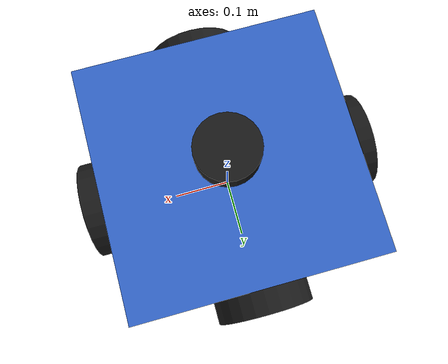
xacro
<?xml version="1.0"?>
<robot name="ammr_base" xmlns:xacro="http://www.ros.org/wiki/xacro">

  <!-- Properties -->
  <xacro:property name="base_size"    value="0.4"/>
  <xacro:property name="base_height"  value="0.12"/>
  <xacro:property name="wheel_radius" value="0.08"/>
  <xacro:property name="wheel_width"  value="0.04"/>
  <xacro:property name="wheel_offset" value="0.22"/>

  <!-- base_footprint (root, on ground) -->
  <link name="base_footprint">
    <inertial>
      <mass value="0.001"/>
      <inertia ixx="1e-6" ixy="0" ixz="0" iyy="1e-6" iyz="0" izz="1e-6"/>
    </inertial>
  </link>

  <joint name="base_joint" type="fixed">
    <parent link="base_footprint"/>
    <child  link="base_link"/>
    <origin xyz="0 0 ${base_height/2 + wheel_radius}" rpy="0 0 0"/>
  </joint>

  <!-- Body -->
  <link name="base_link">
    <visual>
      <geometry>
        <box size="${base_size} ${base_size} ${base_height}"/>
      </geometry>
      <material name="blue">
        <color rgba="0.2 0.4 0.8 1.0"/>
      </material>
    </visual>
    <collision>
      <geometry>
        <box size="${base_size} ${base_size} ${base_height}"/>
      </geometry>
    </collision>
    <inertial>
      <mass value="8.0"/>
      <inertia ixx="0.13" ixy="0.0" ixz="0.0"
                           iyy="0.13" iyz="0.0"
                                      izz="0.22"/>
    </inertial>
  </link>

  <!-- ===== LEFT wheel  (+Y, axis Y, rolls along X) ===== -->
  <joint name="left_wheel_joint" type="continuous">
    <parent link="base_link"/>
    <child  link="left_wheel"/>
    <origin xyz="0 ${wheel_offset} ${-base_height/2}" rpy="${-pi/2} 0 0"/>
    <axis xyz="0 0 1"/>
  </joint>

  <link name="left_wheel">
    <visual>
      <geometry><cylinder radius="${wheel_radius}" length="${wheel_width}"/></geometry>
      <material name="dark"><color rgba="0.1 0.1 0.1 1.0"/></material>
    </visual>
    <collision>
      <geometry><cylinder radius="${wheel_radius}" length="${wheel_width}"/></geometry>
    </collision>
    <inertial>
      <mass value="0.5"/>
      <inertia ixx="0.001" ixy="0.0" ixz="0.0"
                           iyy="0.001" iyz="0.0"
                                       izz="0.002"/>
    </inertial>
  </link>

  <!-- ===== RIGHT wheel (-Y, axis Y, rolls along X) ===== -->
  <joint name="right_wheel_joint" type="continuous">
    <parent link="base_link"/>
    <child  link="right_wheel"/>
    <origin xyz="0 ${-wheel_offset} ${-base_height/2}" rpy="${-pi/2} 0 0"/>
    <axis xyz="0 0 1"/>
  </joint>

  <link name="right_wheel">
    <visual>
      <geometry><cylinder radius="${wheel_radius}" length="${wheel_width}"/></geometry>
      <material name="dark"/>
    </visual>
    <collision>
      <geometry><cylinder radius="${wheel_radius}" length="${wheel_width}"/></geometry>
    </collision>
    <inertial>
      <mass value="0.5"/>
      <inertia ixx="0.001" ixy="0.0" ixz="0.0"
                           iyy="0.001" iyz="0.0"
                                       izz="0.002"/>
    </inertial>
  </link>

  <!-- ===== FRONT wheel (+X, axis X, rolls along Y) ===== -->
  <joint name="front_wheel_joint" type="continuous">
    <parent link="base_link"/>
    <child  link="front_wheel"/>
    <origin xyz="${wheel_offset} 0 ${-base_height/2}" rpy="0 ${-pi/2} 0"/>
    <axis xyz="0 0 1"/>
  </joint>

  <link name="front_wheel">
    <visual>
      <geometry><cylinder radius="${wheel_radius}" length="${wheel_width}"/></geometry>
      <material name="dark"/>
    </visual>
    <collision>
      <geometry><cylinder radius="${wheel_radius}" length="${wheel_width}"/></geometry>
    </collision>
    <inertial>
      <mass value="0.5"/>
      <inertia ixx="0.001" ixy="0.0" ixz="0.0"
                           iyy="0.001" iyz="0.0"
                                       izz="0.002"/>
    </inertial>
  </link>

  <!-- ===== BACK wheel (-X, axis X, rolls along Y) ===== -->
  <joint name="back_wheel_joint" type="continuous">
    <parent link="base_link"/>
    <child  link="back_wheel"/>
    <origin xyz="${-wheel_offset} 0 ${-base_height/2}" rpy="0 ${-pi/2} 0"/>
    <axis xyz="0 0 1"/>
  </joint>

  <link name="back_wheel">
    <visual>
      <geometry><cylinder radius="${wheel_radius}" length="${wheel_width}"/></geometry>
      <material name="dark"/>
    </visual>
    <collision>
      <geometry><cylinder radius="${wheel_radius}" length="${wheel_width}"/></geometry>
    </collision>
    <inertial>
      <mass value="0.5"/>
      <inertia ixx="0.001" ixy="0.0" ixz="0.0"
                           iyy="0.001" iyz="0.0"
                                       izz="0.002"/>
    </inertial>
  </link>

  <!-- ===== LiDAR link ===== -->
  <joint name="lidar_joint" type="fixed">
    <parent link="base_link"/>
    <child  link="lidar_link"/>
    <origin xyz="0 0 ${base_height/2 + 0.05}" rpy="0 0 0"/>
  </joint>

  <link name="lidar_link">
    <visual>
      <geometry><cylinder radius="0.05" length="0.04"/></geometry>
      <material name="black2"><color rgba="0.1 0.1 0.1 1.0"/></material>
    </visual>
    <inertial>
      <mass value="0.1"/>
      <inertia ixx="0.0001" ixy="0" ixz="0" iyy="0.0001" iyz="0" izz="0.0001"/>
    </inertial>
  </link>

  <!-- Gazebo LiDAR sensor -->
  <gazebo reference="lidar_link">
    <sensor name="lidar" type="gpu_lidar">
      <pose>0 0 0 0 0 0</pose>
      <topic>/scan_raw</topic>
      <frame_id>lidar_link</frame_id>
      <update_rate>10</update_rate>
      <ray>
        <scan>
          <horizontal>
            <samples>360</samples>
            <resolution>1</resolution>
            <min_angle>-3.14159</min_angle>
            <max_angle>3.14159</max_angle>
          </horizontal>
        </scan>
        <range>
          <min>0.12</min>
          <max>10.0</max>
          <resolution>0.01</resolution>
        </range>
      </ray>
      <always_on>true</always_on>
      <visualize>true</visualize>
    </sensor>
  </gazebo>

  <gazebo>
    <plugin filename="gz-sim-velocity-control-system"
            name="gz::sim::systems::VelocityControl">
      <topic>/cmd_vel</topic>
    </plugin>
  </gazebo>

  <gazebo>
    <plugin filename="gz-sim-pose-publisher-system"
            name="gz::sim::systems::PosePublisher">
      <publish_link_pose>false</publish_link_pose>
      <publish_model_pose>true</publish_model_pose>
      <use_pose_vector_msg>false</use_pose_vector_msg>
      <update_frequency>20</update_frequency>
    </plugin>
  </gazebo>

  <!-- ===== Per-wheel velocity controllers (visual spinning) ===== -->
  <gazebo>
    <plugin filename="gz-sim-joint-controller-system"
            name="gz::sim::systems::JointController">
      <joint_name>left_wheel_joint</joint_name>
      <topic>/gz/left_wheel_vel</topic>
      <use_force_commands>false</use_force_commands>
    </plugin>
  </gazebo>
  <gazebo>
    <plugin filename="gz-sim-joint-controller-system"
            name="gz::sim::systems::JointController">
      <joint_name>right_wheel_joint</joint_name>
      <topic>/gz/right_wheel_vel</topic>
      <use_force_commands>false</use_force_commands>
    </plugin>
  </gazebo>
  <gazebo>
    <plugin filename="gz-sim-joint-controller-system"
            name="gz::sim::systems::JointController">
      <joint_name>front_wheel_joint</joint_name>
      <topic>/gz/front_wheel_vel</topic>
      <use_force_commands>false</use_force_commands>
    </plugin>
  </gazebo>
  <gazebo>
    <plugin filename="gz-sim-joint-controller-system"
            name="gz::sim::systems::JointController">
      <joint_name>back_wheel_joint</joint_name>
      <topic>/gz/back_wheel_vel</topic>
      <use_force_commands>false</use_force_commands>
    </plugin>
  </gazebo>

  <!-- Zero wheel friction: base motion comes from VelocityControl, not wheel torque -->
  <gazebo reference="left_wheel">
    <mu1>0.0</mu1><mu2>0.0</mu2>
  </gazebo>
  <gazebo reference="right_wheel">
    <mu1>0.0</mu1><mu2>0.0</mu2>
  </gazebo>
  <gazebo reference="front_wheel">
    <mu1>0.0</mu1><mu2>0.0</mu2>
  </gazebo>
  <gazebo reference="back_wheel">
    <mu1>0.0</mu1><mu2>0.0</mu2>
  </gazebo>

</robot>
